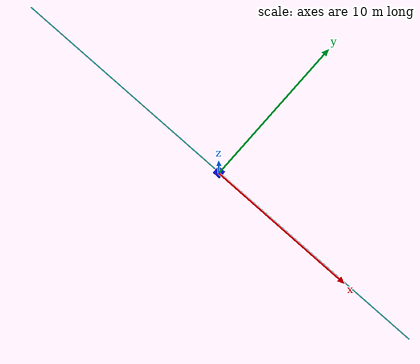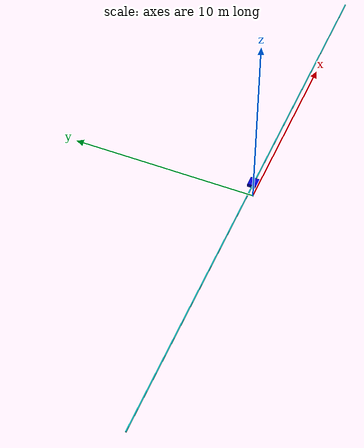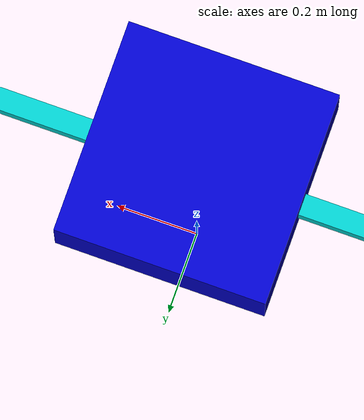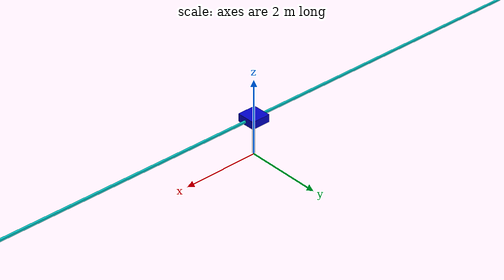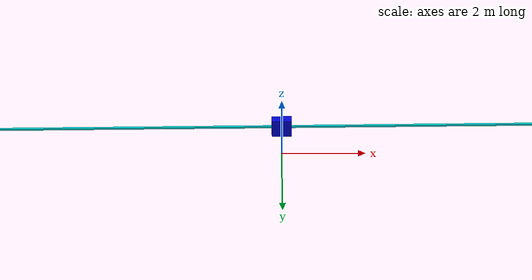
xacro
<?xml version="1.0"?>
<robot name="cartpole" xmlns:xacro="http://ros.org/wiki/xacro">

  <link name="world"/>

  <link name="slideBar">
    <visual>
      <geometry>
        <box size="30 0.05 0.05"/>
      </geometry>
      <origin xyz="0 0 0"/>
      <material name="green">
        <color rgba="0 0.8 .8 1"/>
      </material>
    </visual>
    <inertial>
      <mass value="100"/>
      <inertia ixx="1.0" ixy="0.0" ixz="0.0" iyy="1.0" iyz="0.0" izz="1.0"/>
    </inertial>
  </link>

  <link name="cart">
    <visual>
      <geometry>
        <box size="0.5 0.5 0.2"/>
      </geometry>
      <origin xyz="0 0 0"/>
      <material name="blue">
        <color rgba="0 0 .8 1"/>
      </material>
    </visual>
    <inertial>
      <mass value="1"/>
      <inertia ixx="1.0" ixy="0.0" ixz="0.0" iyy="1.0" iyz="0.0" izz="1.0"/>
    </inertial>
  </link>

  <joint name="world_to_base" type="fixed">
    <origin xyz="0 0 1" rpy="0 0 0"/>
    <parent link="world"/>
    <child link="slideBar"/>
  </joint>

  <joint name="slider_to_cart" type="prismatic">
    <axis xyz="1 0 0"/>
    <origin xyz="0.0 0.0 0.0"/>
    <parent link="slideBar"/>
    <child link="cart"/>
    <limit effort="1000.0" lower="-15" upper="15" velocity="30"/>
    <dynamics damping="0.0" friction="0.0" />
  </joint>

  <link name="pole">
    <visual>
      <geometry>
        <box size="0.05 0.05 1.0"/>
      </geometry>
      <origin rpy="0 0 0" xyz="0 0 -0.5"/>
      <material name="white">
        <color rgba="1 1 1 1"/>
      </material>
    </visual>
    <inertial>
    <origin xyz="0 0 0.5"/>
      <mass value="2"/>
      <inertia ixx="1.0" ixy="0.0" ixz="0.0" iyy="1.0" iyz="0.0" izz="1.0"/>
    </inertial>
  </link>

  <joint name="cart_to_pole" type="continuous">
    <axis xyz="0 1 0"/>
    <origin xyz="0.0 0.0 0"/>
    <parent link="cart"/>
    <child link="pole"/>
    <dynamics damping="0.0" friction="0.0" />
  </joint>

  <transmission name="slider_to_cart_trans">
    <type>transmission_interface/SimpleTransmission</type>
    <joint name="slider_to_cart">
      <hardwareInterface>hardware_interface/VelocityJointInterface</hardwareInterface>
    </joint>
    <actuator name="slider_to_cart_motor">
      <hardwareInterface>hardware_interface/VelocityJointInterface</hardwareInterface>
      <mechanicalReduction>1</mechanicalReduction>
    </actuator>
  </transmission>

  <ros2_control name="GazeboSystem" type="system">
    <hardware>
      <plugin>gazebo_ros2_control/GazeboSystem</plugin>
    </hardware>
    <joint name="slider_to_cart">
      <command_interface name="effort">
        <param name="min">-1000</param>
        <param name="max">1000</param>
      </command_interface>
      <state_interface name="position">
        <param name="initial_value">1.0</param>
      </state_interface>
      <state_interface name="velocity"/>
      <state_interface name="effort"/>
    </joint>
  </ros2_control>

  <gazebo>
    <plugin filename="libgazebo_ros2_control.so" name="gazebo_ros2_control">
      <parameters>$(find cartpole)/config/cartpole_controller.yaml</parameters>
    </plugin>
  </gazebo>

</robot>
